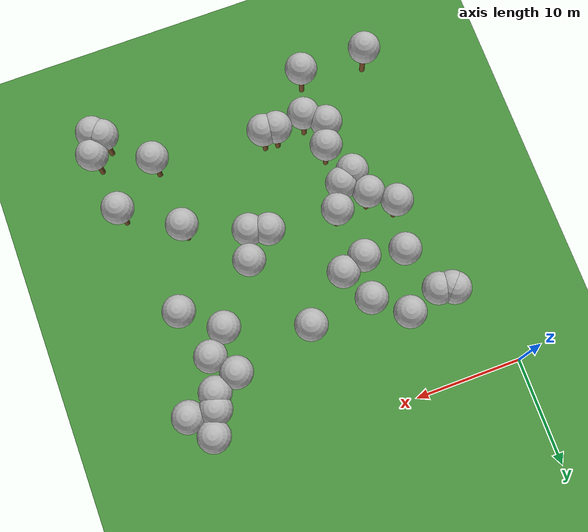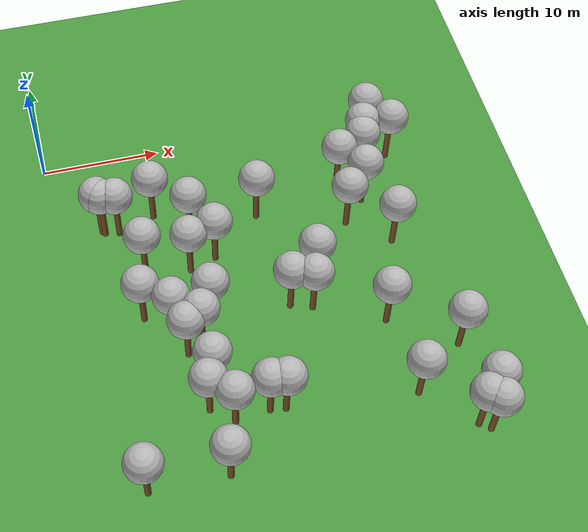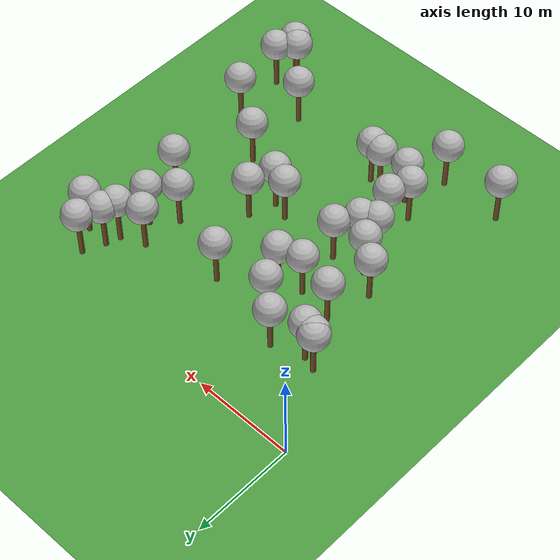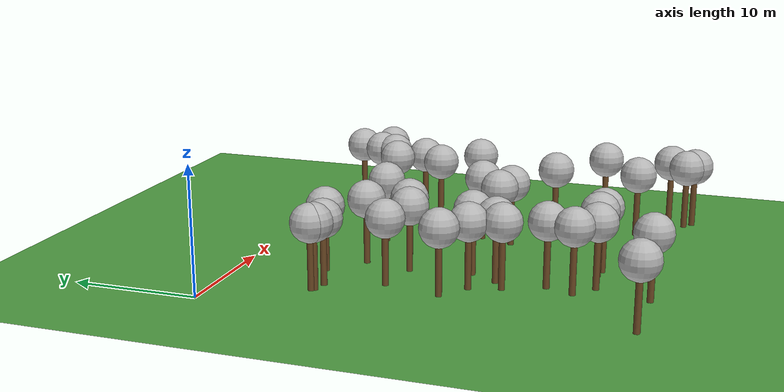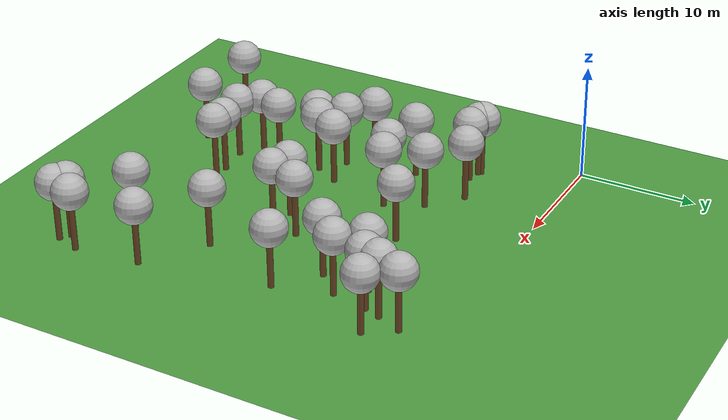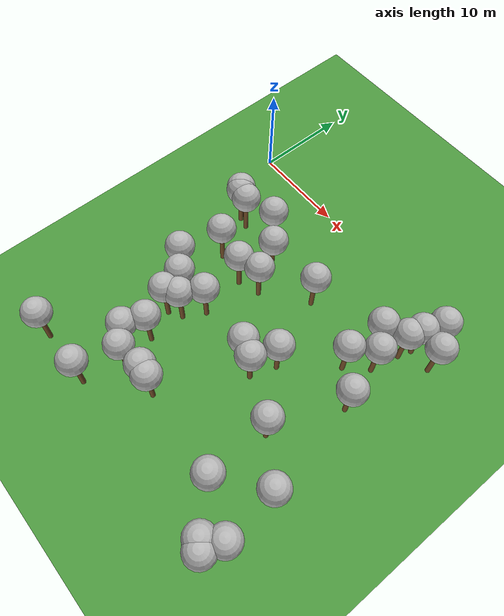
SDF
<sdf version="1.5">
 <world name="default">
  <model name="tree_simple496">
   <static>1</static>
   <link name="link">
    <pose>0 0 0.1 0 -0 0</pose>
    <collision name="collision_trunk">
     <pose>0 0 2 0 -0 0</pose>
     <geometry><cylinder><radius>0.25</radius><length>4</length></cylinder></geometry>
    </collision>
    <collision name="collision_treetop">
     <pose>0 0 5.2 0 -0 0</pose>
     <geometry><sphere><radius>1.5</radius></sphere></geometry>
    </collision>
    <visual name="trunk">
     <pose>0 0 2 0 -0 0</pose>
     <geometry><cylinder><radius>0.25</radius><length>4</length></cylinder></geometry>
     <material>
      <script>
       <uri>model://tree_simple/scripts</uri>
       <uri>model://tree_simple/materials/textures</uri>
       <name>TreeSimple/Trunk</name>
      </script>
     </material>
    </visual>
    <visual name="treetop">
     <pose>0 0 5.2 0 -0 0</pose>
     <geometry><sphere><radius>1.5</radius></sphere></geometry>
     <material>
      <script>
       <uri>model://tree_simple/scripts</uri>
       <uri>model://tree_simple/materials/textures</uri>
       <name>TreeSimple/Treetop</name>
      </script>
     </material>
    </visual>
   </link>
   <pose>13.6194298432 -26.9856291803 0 0 -0 0</pose>
  </model>
  <model name="tree_simple478">
   <static>1</static>
   <link name="link">
    <pose>0 0 0.1 0 -0 0</pose>
    <collision name="collision_trunk">
     <pose>0 0 2 0 -0 0</pose>
     <geometry><cylinder><radius>0.25</radius><length>4</length></cylinder></geometry>
    </collision>
    <collision name="collision_treetop">
     <pose>0 0 5.2 0 -0 0</pose>
     <geometry><sphere><radius>1.5</radius></sphere></geometry>
    </collision>
    <visual name="trunk">
     <pose>0 0 2 0 -0 0</pose>
     <geometry><cylinder><radius>0.25</radius><length>4</length></cylinder></geometry>
     <material>
      <script>
       <uri>model://tree_simple/scripts</uri>
       <uri>model://tree_simple/materials/textures</uri>
       <name>TreeSimple/Trunk</name>
      </script>
     </material>
    </visual>
    <visual name="treetop">
     <pose>0 0 5.2 0 -0 0</pose>
     <geometry><sphere><radius>1.5</radius></sphere></geometry>
     <material>
      <script>
       <uri>model://tree_simple/scripts</uri>
       <uri>model://tree_simple/materials/textures</uri>
       <name>TreeSimple/Treetop</name>
      </script>
     </material>
    </visual>
   </link>
   <pose>6.74093075138 -12.3162984353 0 0 -0 0</pose>
  </model>
  <model name="tree_simple472">
   <static>1</static>
   <link name="link">
    <pose>0 0 0.1 0 -0 0</pose>
    <collision name="collision_trunk">
     <pose>0 0 2 0 -0 0</pose>
     <geometry><cylinder><radius>0.25</radius><length>4</length></cylinder></geometry>
    </collision>
    <collision name="collision_treetop">
     <pose>0 0 5.2 0 -0 0</pose>
     <geometry><sphere><radius>1.5</radius></sphere></geometry>
    </collision>
    <visual name="trunk">
     <pose>0 0 2 0 -0 0</pose>
     <geometry><cylinder><radius>0.25</radius><length>4</length></cylinder></geometry>
     <material>
      <script>
       <uri>model://tree_simple/scripts</uri>
       <uri>model://tree_simple/materials/textures</uri>
       <name>TreeSimple/Trunk</name>
      </script>
     </material>
    </visual>
    <visual name="treetop">
     <pose>0 0 5.2 0 -0 0</pose>
     <geometry><sphere><radius>1.5</radius></sphere></geometry>
     <material>
      <script>
       <uri>model://tree_simple/scripts</uri>
       <uri>model://tree_simple/materials/textures</uri>
       <name>TreeSimple/Treetop</name>
      </script>
     </material>
    </visual>
   </link>
   <pose>9.92228677952 -23.8303447852 0 0 -0 0</pose>
  </model>
  <model name="tree_simple469">
   <static>1</static>
   <link name="link">
    <pose>0 0 0.1 0 -0 0</pose>
    <collision name="collision_trunk">
     <pose>0 0 2 0 -0 0</pose>
     <geometry><cylinder><radius>0.25</radius><length>4</length></cylinder></geometry>
    </collision>
    <collision name="collision_treetop">
     <pose>0 0 5.2 0 -0 0</pose>
     <geometry><sphere><radius>1.5</radius></sphere></geometry>
    </collision>
    <visual name="trunk">
     <pose>0 0 2 0 -0 0</pose>
     <geometry><cylinder><radius>0.25</radius><length>4</length></cylinder></geometry>
     <material>
      <script>
       <uri>model://tree_simple/scripts</uri>
       <uri>model://tree_simple/materials/textures</uri>
       <name>TreeSimple/Trunk</name>
      </script>
     </material>
    </visual>
    <visual name="treetop">
     <pose>0 0 5.2 0 -0 0</pose>
     <geometry><sphere><radius>1.5</radius></sphere></geometry>
     <material>
      <script>
       <uri>model://tree_simple/scripts</uri>
       <uri>model://tree_simple/materials/textures</uri>
       <name>TreeSimple/Treetop</name>
      </script>
     </material>
    </visual>
   </link>
   <pose>28.6908934165 -31.7515844244 0 0 -0 0</pose>
  </model>
  <model name="tree_simple463">
   <static>1</static>
   <link name="link">
    <pose>0 0 0.1 0 -0 0</pose>
    <collision name="collision_trunk">
     <pose>0 0 2 0 -0 0</pose>
     <geometry><cylinder><radius>0.25</radius><length>4</length></cylinder></geometry>
    </collision>
    <collision name="collision_treetop">
     <pose>0 0 5.2 0 -0 0</pose>
     <geometry><sphere><radius>1.5</radius></sphere></geometry>
    </collision>
    <visual name="trunk">
     <pose>0 0 2 0 -0 0</pose>
     <geometry><cylinder><radius>0.25</radius><length>4</length></cylinder></geometry>
     <material>
      <script>
       <uri>model://tree_simple/scripts</uri>
       <uri>model://tree_simple/materials/textures</uri>
       <name>TreeSimple/Trunk</name>
      </script>
     </material>
    </visual>
    <visual name="treetop">
     <pose>0 0 5.2 0 -0 0</pose>
     <geometry><sphere><radius>1.5</radius></sphere></geometry>
     <material>
      <script>
       <uri>model://tree_simple/scripts</uri>
       <uri>model://tree_simple/materials/textures</uri>
       <name>TreeSimple/Treetop</name>
      </script>
     </material>
    </visual>
   </link>
   <pose>4.14452898467 -7.71733475474 0 0 -0 0</pose>
  </model>
  <model name="tree_simple451">
   <static>1</static>
   <link name="link">
    <pose>0 0 0.1 0 -0 0</pose>
    <collision name="collision_trunk">
     <pose>0 0 2 0 -0 0</pose>
     <geometry><cylinder><radius>0.25</radius><length>4</length></cylinder></geometry>
    </collision>
    <collision name="collision_treetop">
     <pose>0 0 5.2 0 -0 0</pose>
     <geometry><sphere><radius>1.5</radius></sphere></geometry>
    </collision>
    <visual name="trunk">
     <pose>0 0 2 0 -0 0</pose>
     <geometry><cylinder><radius>0.25</radius><length>4</length></cylinder></geometry>
     <material>
      <script>
       <uri>model://tree_simple/scripts</uri>
       <uri>model://tree_simple/materials/textures</uri>
       <name>TreeSimple/Trunk</name>
      </script>
     </material>
    </visual>
    <visual name="treetop">
     <pose>0 0 5.2 0 -0 0</pose>
     <geometry><sphere><radius>1.5</radius></sphere></geometry>
     <material>
      <script>
       <uri>model://tree_simple/scripts</uri>
       <uri>model://tree_simple/materials/textures</uri>
       <name>TreeSimple/Treetop</name>
      </script>
     </material>
    </visual>
   </link>
   <pose>25.0880879186 -28.1508348671 0 0 -0 0</pose>
  </model>
  <model name="tree_simple439">
   <static>1</static>
   <link name="link">
    <pose>0 0 0.1 0 -0 0</pose>
    <collision name="collision_trunk">
     <pose>0 0 2 0 -0 0</pose>
     <geometry><cylinder><radius>0.25</radius><length>4</length></cylinder></geometry>
    </collision>
    <collision name="collision_treetop">
     <pose>0 0 5.2 0 -0 0</pose>
     <geometry><sphere><radius>1.5</radius></sphere></geometry>
    </collision>
    <visual name="trunk">
     <pose>0 0 2 0 -0 0</pose>
     <geometry><cylinder><radius>0.25</radius><length>4</length></cylinder></geometry>
     <material>
      <script>
       <uri>model://tree_simple/scripts</uri>
       <uri>model://tree_simple/materials/textures</uri>
       <name>TreeSimple/Trunk</name>
      </script>
     </material>
    </visual>
    <visual name="treetop">
     <pose>0 0 5.2 0 -0 0</pose>
     <geometry><sphere><radius>1.5</radius></sphere></geometry>
     <material>
      <script>
       <uri>model://tree_simple/scripts</uri>
       <uri>model://tree_simple/materials/textures</uri>
       <name>TreeSimple/Treetop</name>
      </script>
     </material>
    </visual>
   </link>
   <pose>8.56501316053 -20.7640585998 0 0 -0 0</pose>
  </model>
  <model name="tree_simple432">
   <static>1</static>
   <link name="link">
    <pose>0 0 0.1 0 -0 0</pose>
    <collision name="collision_trunk">
     <pose>0 0 2 0 -0 0</pose>
     <geometry><cylinder><radius>0.25</radius><length>4</length></cylinder></geometry>
    </collision>
    <collision name="collision_treetop">
     <pose>0 0 5.2 0 -0 0</pose>
     <geometry><sphere><radius>1.5</radius></sphere></geometry>
    </collision>
    <visual name="trunk">
     <pose>0 0 2 0 -0 0</pose>
     <geometry><cylinder><radius>0.25</radius><length>4</length></cylinder></geometry>
     <material>
      <script>
       <uri>model://tree_simple/scripts</uri>
       <uri>model://tree_simple/materials/textures</uri>
       <name>TreeSimple/Trunk</name>
      </script>
     </material>
    </visual>
    <visual name="treetop">
     <pose>0 0 5.2 0 -0 0</pose>
     <geometry><sphere><radius>1.5</radius></sphere></geometry>
     <material>
      <script>
       <uri>model://tree_simple/scripts</uri>
       <uri>model://tree_simple/materials/textures</uri>
       <name>TreeSimple/Treetop</name>
      </script>
     </material>
    </visual>
   </link>
   <pose>8.39657738542 -6.88848549894 0 0 -0 0</pose>
  </model>
  <model name="tree_simple429">
   <static>1</static>
   <link name="link">
    <pose>0 0 0.1 0 -0 0</pose>
    <collision name="collision_trunk">
     <pose>0 0 2 0 -0 0</pose>
     <geometry><cylinder><radius>0.25</radius><length>4</length></cylinder></geometry>
    </collision>
    <collision name="collision_treetop">
     <pose>0 0 5.2 0 -0 0</pose>
     <geometry><sphere><radius>1.5</radius></sphere></geometry>
    </collision>
    <visual name="trunk">
     <pose>0 0 2 0 -0 0</pose>
     <geometry><cylinder><radius>0.25</radius><length>4</length></cylinder></geometry>
     <material>
      <script>
       <uri>model://tree_simple/scripts</uri>
       <uri>model://tree_simple/materials/textures</uri>
       <name>TreeSimple/Trunk</name>
      </script>
     </material>
    </visual>
    <visual name="treetop">
     <pose>0 0 5.2 0 -0 0</pose>
     <geometry><sphere><radius>1.5</radius></sphere></geometry>
     <material>
      <script>
       <uri>model://tree_simple/scripts</uri>
       <uri>model://tree_simple/materials/textures</uri>
       <name>TreeSimple/Treetop</name>
      </script>
     </material>
    </visual>
   </link>
   <pose>29.4727075469 -24.7358283571 0 0 -0 0</pose>
  </model>
  <model name="tree_simple428">
   <static>1</static>
   <link name="link">
    <pose>0 0 0.1 0 -0 0</pose>
    <collision name="collision_trunk">
     <pose>0 0 2 0 -0 0</pose>
     <geometry><cylinder><radius>0.25</radius><length>4</length></cylinder></geometry>
    </collision>
    <collision name="collision_treetop">
     <pose>0 0 5.2 0 -0 0</pose>
     <geometry><sphere><radius>1.5</radius></sphere></geometry>
    </collision>
    <visual name="trunk">
     <pose>0 0 2 0 -0 0</pose>
     <geometry><cylinder><radius>0.25</radius><length>4</length></cylinder></geometry>
     <material>
      <script>
       <uri>model://tree_simple/scripts</uri>
       <uri>model://tree_simple/materials/textures</uri>
       <name>TreeSimple/Trunk</name>
      </script>
     </material>
    </visual>
    <visual name="treetop">
     <pose>0 0 5.2 0 -0 0</pose>
     <geometry><sphere><radius>1.5</radius></sphere></geometry>
     <material>
      <script>
       <uri>model://tree_simple/scripts</uri>
       <uri>model://tree_simple/materials/textures</uri>
       <name>TreeSimple/Treetop</name>
      </script>
     </material>
    </visual>
   </link>
   <pose>9.87663766252 -19.9509422297 0 0 -0 0</pose>
  </model>
  <model name="tree_simple394">
   <static>1</static>
   <link name="link">
    <pose>0 0 0.1 0 -0 0</pose>
    <collision name="collision_trunk">
     <pose>0 0 2 0 -0 0</pose>
     <geometry><cylinder><radius>0.25</radius><length>4</length></cylinder></geometry>
    </collision>
    <collision name="collision_treetop">
     <pose>0 0 5.2 0 -0 0</pose>
     <geometry><sphere><radius>1.5</radius></sphere></geometry>
    </collision>
    <visual name="trunk">
     <pose>0 0 2 0 -0 0</pose>
     <geometry><cylinder><radius>0.25</radius><length>4</length></cylinder></geometry>
     <material>
      <script>
       <uri>model://tree_simple/scripts</uri>
       <uri>model://tree_simple/materials/textures</uri>
       <name>TreeSimple/Trunk</name>
      </script>
     </material>
    </visual>
    <visual name="treetop">
     <pose>0 0 5.2 0 -0 0</pose>
     <geometry><sphere><radius>1.5</radius></sphere></geometry>
     <material>
      <script>
       <uri>model://tree_simple/scripts</uri>
       <uri>model://tree_simple/materials/textures</uri>
       <name>TreeSimple/Treetop</name>
      </script>
     </material>
    </visual>
   </link>
   <pose>26.6658652991 -6.19294115589 0 0 -0 0</pose>
  </model>
  <model name="tree_simple389">
   <static>1</static>
   <link name="link">
    <pose>0 0 0.1 0 -0 0</pose>
    <collision name="collision_trunk">
     <pose>0 0 2 0 -0 0</pose>
     <geometry><cylinder><radius>0.25</radius><length>4</length></cylinder></geometry>
    </collision>
    <collision name="collision_treetop">
     <pose>0 0 5.2 0 -0 0</pose>
     <geometry><sphere><radius>1.5</radius></sphere></geometry>
    </collision>
    <visual name="trunk">
     <pose>0 0 2 0 -0 0</pose>
     <geometry><cylinder><radius>0.25</radius><length>4</length></cylinder></geometry>
     <material>
      <script>
       <uri>model://tree_simple/scripts</uri>
       <uri>model://tree_simple/materials/textures</uri>
       <name>TreeSimple/Trunk</name>
      </script>
     </material>
    </visual>
    <visual name="treetop">
     <pose>0 0 5.2 0 -0 0</pose>
     <geometry><sphere><radius>1.5</radius></sphere></geometry>
     <material>
      <script>
       <uri>model://tree_simple/scripts</uri>
       <uri>model://tree_simple/materials/textures</uri>
       <name>TreeSimple/Treetop</name>
      </script>
     </material>
    </visual>
   </link>
   <pose>12.5934036343 -12.2598342596 0 0 -0 0</pose>
  </model>
  <model name="tree_simple377">
   <static>1</static>
   <link name="link">
    <pose>0 0 0.1 0 -0 0</pose>
    <collision name="collision_trunk">
     <pose>0 0 2 0 -0 0</pose>
     <geometry><cylinder><radius>0.25</radius><length>4</length></cylinder></geometry>
    </collision>
    <collision name="collision_treetop">
     <pose>0 0 5.2 0 -0 0</pose>
     <geometry><sphere><radius>1.5</radius></sphere></geometry>
    </collision>
    <visual name="trunk">
     <pose>0 0 2 0 -0 0</pose>
     <geometry><cylinder><radius>0.25</radius><length>4</length></cylinder></geometry>
     <material>
      <script>
       <uri>model://tree_simple/scripts</uri>
       <uri>model://tree_simple/materials/textures</uri>
       <name>TreeSimple/Trunk</name>
      </script>
     </material>
    </visual>
    <visual name="treetop">
     <pose>0 0 5.2 0 -0 0</pose>
     <geometry><sphere><radius>1.5</radius></sphere></geometry>
     <material>
      <script>
       <uri>model://tree_simple/scripts</uri>
       <uri>model://tree_simple/materials/textures</uri>
       <name>TreeSimple/Treetop</name>
      </script>
     </material>
    </visual>
   </link>
   <pose>10.8205708978 -27.3699142702 0 0 -0 0</pose>
  </model>
  <model name="tree_simple327">
   <static>1</static>
   <link name="link">
    <pose>0 0 0.1 0 -0 0</pose>
    <collision name="collision_trunk">
     <pose>0 0 2 0 -0 0</pose>
     <geometry><cylinder><radius>0.25</radius><length>4</length></cylinder></geometry>
    </collision>
    <collision name="collision_treetop">
     <pose>0 0 5.2 0 -0 0</pose>
     <geometry><sphere><radius>1.5</radius></sphere></geometry>
    </collision>
    <visual name="trunk">
     <pose>0 0 2 0 -0 0</pose>
     <geometry><cylinder><radius>0.25</radius><length>4</length></cylinder></geometry>
     <material>
      <script>
       <uri>model://tree_simple/scripts</uri>
       <uri>model://tree_simple/materials/textures</uri>
       <name>TreeSimple/Trunk</name>
      </script>
     </material>
    </visual>
    <visual name="treetop">
     <pose>0 0 5.2 0 -0 0</pose>
     <geometry><sphere><radius>1.5</radius></sphere></geometry>
     <material>
      <script>
       <uri>model://tree_simple/scripts</uri>
       <uri>model://tree_simple/materials/textures</uri>
       <name>TreeSimple/Treetop</name>
      </script>
     </material>
    </visual>
   </link>
   <pose>5.78438571624 -16.7663148306 0 0 -0 0</pose>
  </model>
  <model name="tree_simple309">
   <static>1</static>
   <link name="link">
    <pose>0 0 0.1 0 -0 0</pose>
    <collision name="collision_trunk">
     <pose>0 0 2 0 -0 0</pose>
     <geometry><cylinder><radius>0.25</radius><length>4</length></cylinder></geometry>
    </collision>
    <collision name="collision_treetop">
     <pose>0 0 5.2 0 -0 0</pose>
     <geometry><sphere><radius>1.5</radius></sphere></geometry>
    </collision>
    <visual name="trunk">
     <pose>0 0 2 0 -0 0</pose>
     <geometry><cylinder><radius>0.25</radius><length>4</length></cylinder></geometry>
     <material>
      <script>
       <uri>model://tree_simple/scripts</uri>
       <uri>model://tree_simple/materials/textures</uri>
       <name>TreeSimple/Trunk</name>
      </script>
     </material>
    </visual>
    <visual name="treetop">
     <pose>0 0 5.2 0 -0 0</pose>
     <geometry><sphere><radius>1.5</radius></sphere></geometry>
     <material>
      <script>
       <uri>model://tree_simple/scripts</uri>
       <uri>model://tree_simple/materials/textures</uri>
       <name>TreeSimple/Treetop</name>
      </script>
     </material>
    </visual>
   </link>
   <pose>19.1748935323 -18.8000539767 0 0 -0 0</pose>
  </model>
  <model name="tree_simple301">
   <static>1</static>
   <link name="link">
    <pose>0 0 0.1 0 -0 0</pose>
    <collision name="collision_trunk">
     <pose>0 0 2 0 -0 0</pose>
     <geometry><cylinder><radius>0.25</radius><length>4</length></cylinder></geometry>
    </collision>
    <collision name="collision_treetop">
     <pose>0 0 5.2 0 -0 0</pose>
     <geometry><sphere><radius>1.5</radius></sphere></geometry>
    </collision>
    <visual name="trunk">
     <pose>0 0 2 0 -0 0</pose>
     <geometry><cylinder><radius>0.25</radius><length>4</length></cylinder></geometry>
     <material>
      <script>
       <uri>model://tree_simple/scripts</uri>
       <uri>model://tree_simple/materials/textures</uri>
       <name>TreeSimple/Trunk</name>
      </script>
     </material>
    </visual>
    <visual name="treetop">
     <pose>0 0 5.2 0 -0 0</pose>
     <geometry><sphere><radius>1.5</radius></sphere></geometry>
     <material>
      <script>
       <uri>model://tree_simple/scripts</uri>
       <uri>model://tree_simple/materials/textures</uri>
       <name>TreeSimple/Treetop</name>
      </script>
     </material>
    </visual>
   </link>
   <pose>27.965012063 -2.69695305694 0 0 -0 0</pose>
  </model>
  <model name="tree_simple292">
   <static>1</static>
   <link name="link">
    <pose>0 0 0.1 0 -0 0</pose>
    <collision name="collision_trunk">
     <pose>0 0 2 0 -0 0</pose>
     <geometry><cylinder><radius>0.25</radius><length>4</length></cylinder></geometry>
    </collision>
    <collision name="collision_treetop">
     <pose>0 0 5.2 0 -0 0</pose>
     <geometry><sphere><radius>1.5</radius></sphere></geometry>
    </collision>
    <visual name="trunk">
     <pose>0 0 2 0 -0 0</pose>
     <geometry><cylinder><radius>0.25</radius><length>4</length></cylinder></geometry>
     <material>
      <script>
       <uri>model://tree_simple/scripts</uri>
       <uri>model://tree_simple/materials/textures</uri>
       <name>TreeSimple/Trunk</name>
      </script>
     </material>
    </visual>
    <visual name="treetop">
     <pose>0 0 5.2 0 -0 0</pose>
     <geometry><sphere><radius>1.5</radius></sphere></geometry>
     <material>
      <script>
       <uri>model://tree_simple/scripts</uri>
       <uri>model://tree_simple/materials/textures</uri>
       <name>TreeSimple/Treetop</name>
      </script>
     </material>
    </visual>
   </link>
   <pose>16.8917664362 -8.8290409333 0 0 -0 0</pose>
  </model>
  <model name="tree_simple290">
   <static>1</static>
   <link name="link">
    <pose>0 0 0.1 0 -0 0</pose>
    <collision name="collision_trunk">
     <pose>0 0 2 0 -0 0</pose>
     <geometry><cylinder><radius>0.25</radius><length>4</length></cylinder></geometry>
    </collision>
    <collision name="collision_treetop">
     <pose>0 0 5.2 0 -0 0</pose>
     <geometry><sphere><radius>1.5</radius></sphere></geometry>
    </collision>
    <visual name="trunk">
     <pose>0 0 2 0 -0 0</pose>
     <geometry><cylinder><radius>0.25</radius><length>4</length></cylinder></geometry>
     <material>
      <script>
       <uri>model://tree_simple/scripts</uri>
       <uri>model://tree_simple/materials/textures</uri>
       <name>TreeSimple/Trunk</name>
      </script>
     </material>
    </visual>
    <visual name="treetop">
     <pose>0 0 5.2 0 -0 0</pose>
     <geometry><sphere><radius>1.5</radius></sphere></geometry>
     <material>
      <script>
       <uri>model://tree_simple/scripts</uri>
       <uri>model://tree_simple/materials/textures</uri>
       <name>TreeSimple/Treetop</name>
      </script>
     </material>
    </visual>
   </link>
   <pose>27.3398552582 -13.9618363734 0 0 -0 0</pose>
  </model>
  <model name="tree_simple288">
   <static>1</static>
   <link name="link">
    <pose>0 0 0.1 0 -0 0</pose>
    <collision name="collision_trunk">
     <pose>0 0 2 0 -0 0</pose>
     <geometry><cylinder><radius>0.25</radius><length>4</length></cylinder></geometry>
    </collision>
    <collision name="collision_treetop">
     <pose>0 0 5.2 0 -0 0</pose>
     <geometry><sphere><radius>1.5</radius></sphere></geometry>
    </collision>
    <visual name="trunk">
     <pose>0 0 2 0 -0 0</pose>
     <geometry><cylinder><radius>0.25</radius><length>4</length></cylinder></geometry>
     <material>
      <script>
       <uri>model://tree_simple/scripts</uri>
       <uri>model://tree_simple/materials/textures</uri>
       <name>TreeSimple/Trunk</name>
      </script>
     </material>
    </visual>
    <visual name="treetop">
     <pose>0 0 5.2 0 -0 0</pose>
     <geometry><sphere><radius>1.5</radius></sphere></geometry>
     <material>
      <script>
       <uri>model://tree_simple/scripts</uri>
       <uri>model://tree_simple/materials/textures</uri>
       <name>TreeSimple/Treetop</name>
      </script>
     </material>
    </visual>
   </link>
   <pose>27.0972467775 -4.81040951666 0 0 -0 0</pose>
  </model>
  <model name="tree_simple267">
   <static>1</static>
   <link name="link">
    <pose>0 0 0.1 0 -0 0</pose>
    <collision name="collision_trunk">
     <pose>0 0 2 0 -0 0</pose>
     <geometry><cylinder><radius>0.25</radius><length>4</length></cylinder></geometry>
    </collision>
    <collision name="collision_treetop">
     <pose>0 0 5.2 0 -0 0</pose>
     <geometry><sphere><radius>1.5</radius></sphere></geometry>
    </collision>
    <visual name="trunk">
     <pose>0 0 2 0 -0 0</pose>
     <geometry><cylinder><radius>0.25</radius><length>4</length></cylinder></geometry>
     <material>
      <script>
       <uri>model://tree_simple/scripts</uri>
       <uri>model://tree_simple/materials/textures</uri>
       <name>TreeSimple/Trunk</name>
      </script>
     </material>
    </visual>
    <visual name="treetop">
     <pose>0 0 5.2 0 -0 0</pose>
     <geometry><sphere><radius>1.5</radius></sphere></geometry>
     <material>
      <script>
       <uri>model://tree_simple/scripts</uri>
       <uri>model://tree_simple/materials/textures</uri>
       <name>TreeSimple/Treetop</name>
      </script>
     </material>
    </visual>
   </link>
   <pose>26.0311147771 -9.256788114 0 0 -0 0</pose>
  </model>
  <model name="tree_simple255">
   <static>1</static>
   <link name="link">
    <pose>0 0 0.1 0 -0 0</pose>
    <collision name="collision_trunk">
     <pose>0 0 2 0 -0 0</pose>
     <geometry><cylinder><radius>0.25</radius><length>4</length></cylinder></geometry>
    </collision>
    <collision name="collision_treetop">
     <pose>0 0 5.2 0 -0 0</pose>
     <geometry><sphere><radius>1.5</radius></sphere></geometry>
    </collision>
    <visual name="trunk">
     <pose>0 0 2 0 -0 0</pose>
     <geometry><cylinder><radius>0.25</radius><length>4</length></cylinder></geometry>
     <material>
      <script>
       <uri>model://tree_simple/scripts</uri>
       <uri>model://tree_simple/materials/textures</uri>
       <name>TreeSimple/Trunk</name>
      </script>
     </material>
    </visual>
    <visual name="treetop">
     <pose>0 0 5.2 0 -0 0</pose>
     <geometry><sphere><radius>1.5</radius></sphere></geometry>
     <material>
      <script>
       <uri>model://tree_simple/scripts</uri>
       <uri>model://tree_simple/materials/textures</uri>
       <name>TreeSimple/Treetop</name>
      </script>
     </material>
    </visual>
   </link>
   <pose>30.0970419452 -30.3026780561 0 0 -0 0</pose>
  </model>
  <model name="tree_simple249">
   <static>1</static>
   <link name="link">
    <pose>0 0 0.1 0 -0 0</pose>
    <collision name="collision_trunk">
     <pose>0 0 2 0 -0 0</pose>
     <geometry><cylinder><radius>0.25</radius><length>4</length></cylinder></geometry>
    </collision>
    <collision name="collision_treetop">
     <pose>0 0 5.2 0 -0 0</pose>
     <geometry><sphere><radius>1.5</radius></sphere></geometry>
    </collision>
    <visual name="trunk">
     <pose>0 0 2 0 -0 0</pose>
     <geometry><cylinder><radius>0.25</radius><length>4</length></cylinder></geometry>
     <material>
      <script>
       <uri>model://tree_simple/scripts</uri>
       <uri>model://tree_simple/materials/textures</uri>
       <name>TreeSimple/Trunk</name>
      </script>
     </material>
    </visual>
    <visual name="treetop">
     <pose>0 0 5.2 0 -0 0</pose>
     <geometry><sphere><radius>1.5</radius></sphere></geometry>
     <material>
      <script>
       <uri>model://tree_simple/scripts</uri>
       <uri>model://tree_simple/materials/textures</uri>
       <name>TreeSimple/Treetop</name>
      </script>
     </material>
    </visual>
   </link>
   <pose>9.52111231685 -31.538100668 0 0 -0 0</pose>
  </model>
  <model name="tree_simple222">
   <static>1</static>
   <link name="link">
    <pose>0 0 0.1 0 -0 0</pose>
    <collision name="collision_trunk">
     <pose>0 0 2 0 -0 0</pose>
     <geometry><cylinder><radius>0.25</radius><length>4</length></cylinder></geometry>
    </collision>
    <collision name="collision_treetop">
     <pose>0 0 5.2 0 -0 0</pose>
     <geometry><sphere><radius>1.5</radius></sphere></geometry>
    </collision>
    <visual name="trunk">
     <pose>0 0 2 0 -0 0</pose>
     <geometry><cylinder><radius>0.25</radius><length>4</length></cylinder></geometry>
     <material>
      <script>
       <uri>model://tree_simple/scripts</uri>
       <uri>model://tree_simple/materials/textures</uri>
       <name>TreeSimple/Trunk</name>
      </script>
     </material>
    </visual>
    <visual name="treetop">
     <pose>0 0 5.2 0 -0 0</pose>
     <geometry><sphere><radius>1.5</radius></sphere></geometry>
     <material>
      <script>
       <uri>model://tree_simple/scripts</uri>
       <uri>model://tree_simple/materials/textures</uri>
       <name>TreeSimple/Treetop</name>
      </script>
     </material>
    </visual>
   </link>
   <pose>3.92504774623 -7.51224141252 0 0 -0 0</pose>
  </model>
  <model name="tree_simple211">
   <static>1</static>
   <link name="link">
    <pose>0 0 0.1 0 -0 0</pose>
    <collision name="collision_trunk">
     <pose>0 0 2 0 -0 0</pose>
     <geometry><cylinder><radius>0.25</radius><length>4</length></cylinder></geometry>
    </collision>
    <collision name="collision_treetop">
     <pose>0 0 5.2 0 -0 0</pose>
     <geometry><sphere><radius>1.5</radius></sphere></geometry>
    </collision>
    <visual name="trunk">
     <pose>0 0 2 0 -0 0</pose>
     <geometry><cylinder><radius>0.25</radius><length>4</length></cylinder></geometry>
     <material>
      <script>
       <uri>model://tree_simple/scripts</uri>
       <uri>model://tree_simple/materials/textures</uri>
       <name>TreeSimple/Trunk</name>
      </script>
     </material>
    </visual>
    <visual name="treetop">
     <pose>0 0 5.2 0 -0 0</pose>
     <geometry><sphere><radius>1.5</radius></sphere></geometry>
     <material>
      <script>
       <uri>model://tree_simple/scripts</uri>
       <uri>model://tree_simple/materials/textures</uri>
       <name>TreeSimple/Treetop</name>
      </script>
     </material>
    </visual>
   </link>
   <pose>24.1088627432 -11.2741546154 0 0 -0 0</pose>
  </model>
  <model name="tree_simple191">
   <static>1</static>
   <link name="link">
    <pose>0 0 0.1 0 -0 0</pose>
    <collision name="collision_trunk">
     <pose>0 0 2 0 -0 0</pose>
     <geometry><cylinder><radius>0.25</radius><length>4</length></cylinder></geometry>
    </collision>
    <collision name="collision_treetop">
     <pose>0 0 5.2 0 -0 0</pose>
     <geometry><sphere><radius>1.5</radius></sphere></geometry>
    </collision>
    <visual name="trunk">
     <pose>0 0 2 0 -0 0</pose>
     <geometry><cylinder><radius>0.25</radius><length>4</length></cylinder></geometry>
     <material>
      <script>
       <uri>model://tree_simple/scripts</uri>
       <uri>model://tree_simple/materials/textures</uri>
       <name>TreeSimple/Trunk</name>
      </script>
     </material>
    </visual>
    <visual name="treetop">
     <pose>0 0 5.2 0 -0 0</pose>
     <geometry><sphere><radius>1.5</radius></sphere></geometry>
     <material>
      <script>
       <uri>model://tree_simple/scripts</uri>
       <uri>model://tree_simple/materials/textures</uri>
       <name>TreeSimple/Treetop</name>
      </script>
     </material>
    </visual>
   </link>
   <pose>7.88783183775 -18.3803184039 0 0 -0 0</pose>
  </model>
  <model name="tree_simple178">
   <static>1</static>
   <link name="link">
    <pose>0 0 0.1 0 -0 0</pose>
    <collision name="collision_trunk">
     <pose>0 0 2 0 -0 0</pose>
     <geometry><cylinder><radius>0.25</radius><length>4</length></cylinder></geometry>
    </collision>
    <collision name="collision_treetop">
     <pose>0 0 5.2 0 -0 0</pose>
     <geometry><sphere><radius>1.5</radius></sphere></geometry>
    </collision>
    <visual name="trunk">
     <pose>0 0 2 0 -0 0</pose>
     <geometry><cylinder><radius>0.25</radius><length>4</length></cylinder></geometry>
     <material>
      <script>
       <uri>model://tree_simple/scripts</uri>
       <uri>model://tree_simple/materials/textures</uri>
       <name>TreeSimple/Trunk</name>
      </script>
     </material>
    </visual>
    <visual name="treetop">
     <pose>0 0 5.2 0 -0 0</pose>
     <geometry><sphere><radius>1.5</radius></sphere></geometry>
     <material>
      <script>
       <uri>model://tree_simple/scripts</uri>
       <uri>model://tree_simple/materials/textures</uri>
       <name>TreeSimple/Treetop</name>
      </script>
     </material>
    </visual>
   </link>
   <pose>24.3791750449 -7.18218424398 0 0 -0 0</pose>
  </model>
  <model name="tree_simple168">
   <static>1</static>
   <link name="link">
    <pose>0 0 0.1 0 -0 0</pose>
    <collision name="collision_trunk">
     <pose>0 0 2 0 -0 0</pose>
     <geometry><cylinder><radius>0.25</radius><length>4</length></cylinder></geometry>
    </collision>
    <collision name="collision_treetop">
     <pose>0 0 5.2 0 -0 0</pose>
     <geometry><sphere><radius>1.5</radius></sphere></geometry>
    </collision>
    <visual name="trunk">
     <pose>0 0 2 0 -0 0</pose>
     <geometry><cylinder><radius>0.25</radius><length>4</length></cylinder></geometry>
     <material>
      <script>
       <uri>model://tree_simple/scripts</uri>
       <uri>model://tree_simple/materials/textures</uri>
       <name>TreeSimple/Trunk</name>
      </script>
     </material>
    </visual>
    <visual name="treetop">
     <pose>0 0 5.2 0 -0 0</pose>
     <geometry><sphere><radius>1.5</radius></sphere></geometry>
     <material>
      <script>
       <uri>model://tree_simple/scripts</uri>
       <uri>model://tree_simple/materials/textures</uri>
       <name>TreeSimple/Treetop</name>
      </script>
     </material>
    </visual>
   </link>
   <pose>14.8234440125 -27.1346741382 0 0 -0 0</pose>
  </model>
  <model name="tree_simple157">
   <static>1</static>
   <link name="link">
    <pose>0 0 0.1 0 -0 0</pose>
    <collision name="collision_trunk">
     <pose>0 0 2 0 -0 0</pose>
     <geometry><cylinder><radius>0.25</radius><length>4</length></cylinder></geometry>
    </collision>
    <collision name="collision_treetop">
     <pose>0 0 5.2 0 -0 0</pose>
     <geometry><sphere><radius>1.5</radius></sphere></geometry>
    </collision>
    <visual name="trunk">
     <pose>0 0 2 0 -0 0</pose>
     <geometry><cylinder><radius>0.25</radius><length>4</length></cylinder></geometry>
     <material>
      <script>
       <uri>model://tree_simple/scripts</uri>
       <uri>model://tree_simple/materials/textures</uri>
       <name>TreeSimple/Trunk</name>
      </script>
     </material>
    </visual>
    <visual name="treetop">
     <pose>0 0 5.2 0 -0 0</pose>
     <geometry><sphere><radius>1.5</radius></sphere></geometry>
     <material>
      <script>
       <uri>model://tree_simple/scripts</uri>
       <uri>model://tree_simple/materials/textures</uri>
       <name>TreeSimple/Treetop</name>
      </script>
     </material>
    </visual>
   </link>
   <pose>17.4643259264 -18.2232751505 0 0 -0 0</pose>
  </model>
  <model name="tree_simple156">
   <static>1</static>
   <link name="link">
    <pose>0 0 0.1 0 -0 0</pose>
    <collision name="collision_trunk">
     <pose>0 0 2 0 -0 0</pose>
     <geometry><cylinder><radius>0.25</radius><length>4</length></cylinder></geometry>
    </collision>
    <collision name="collision_treetop">
     <pose>0 0 5.2 0 -0 0</pose>
     <geometry><sphere><radius>1.5</radius></sphere></geometry>
    </collision>
    <visual name="trunk">
     <pose>0 0 2 0 -0 0</pose>
     <geometry><cylinder><radius>0.25</radius><length>4</length></cylinder></geometry>
     <material>
      <script>
       <uri>model://tree_simple/scripts</uri>
       <uri>model://tree_simple/materials/textures</uri>
       <name>TreeSimple/Trunk</name>
      </script>
     </material>
    </visual>
    <visual name="treetop">
     <pose>0 0 5.2 0 -0 0</pose>
     <geometry><sphere><radius>1.5</radius></sphere></geometry>
     <material>
      <script>
       <uri>model://tree_simple/scripts</uri>
       <uri>model://tree_simple/materials/textures</uri>
       <name>TreeSimple/Treetop</name>
      </script>
     </material>
    </visual>
   </link>
   <pose>20.0356149828 -16.1600287231 0 0 -0 0</pose>
  </model>
  <model name="tree_simple124">
   <static>1</static>
   <link name="link">
    <pose>0 0 0.1 0 -0 0</pose>
    <collision name="collision_trunk">
     <pose>0 0 2 0 -0 0</pose>
     <geometry><cylinder><radius>0.25</radius><length>4</length></cylinder></geometry>
    </collision>
    <collision name="collision_treetop">
     <pose>0 0 5.2 0 -0 0</pose>
     <geometry><sphere><radius>1.5</radius></sphere></geometry>
    </collision>
    <visual name="trunk">
     <pose>0 0 2 0 -0 0</pose>
     <geometry><cylinder><radius>0.25</radius><length>4</length></cylinder></geometry>
     <material>
      <script>
       <uri>model://tree_simple/scripts</uri>
       <uri>model://tree_simple/materials/textures</uri>
       <name>TreeSimple/Trunk</name>
      </script>
     </material>
    </visual>
    <visual name="treetop">
     <pose>0 0 5.2 0 -0 0</pose>
     <geometry><sphere><radius>1.5</radius></sphere></geometry>
     <material>
      <script>
       <uri>model://tree_simple/scripts</uri>
       <uri>model://tree_simple/materials/textures</uri>
       <name>TreeSimple/Treetop</name>
      </script>
     </material>
    </visual>
   </link>
   <pose>5.29940018808 -7.97080739541 0 0 -0 0</pose>
  </model>
  <model name="tree_simple120">
   <static>1</static>
   <link name="link">
    <pose>0 0 0.1 0 -0 0</pose>
    <collision name="collision_trunk">
     <pose>0 0 2 0 -0 0</pose>
     <geometry><cylinder><radius>0.25</radius><length>4</length></cylinder></geometry>
    </collision>
    <collision name="collision_treetop">
     <pose>0 0 5.2 0 -0 0</pose>
     <geometry><sphere><radius>1.5</radius></sphere></geometry>
    </collision>
    <visual name="trunk">
     <pose>0 0 2 0 -0 0</pose>
     <geometry><cylinder><radius>0.25</radius><length>4</length></cylinder></geometry>
     <material>
      <script>
       <uri>model://tree_simple/scripts</uri>
       <uri>model://tree_simple/materials/textures</uri>
       <name>TreeSimple/Trunk</name>
      </script>
     </material>
    </visual>
    <visual name="treetop">
     <pose>0 0 5.2 0 -0 0</pose>
     <geometry><sphere><radius>1.5</radius></sphere></geometry>
     <material>
      <script>
       <uri>model://tree_simple/scripts</uri>
       <uri>model://tree_simple/materials/textures</uri>
       <name>TreeSimple/Treetop</name>
      </script>
     </material>
    </visual>
   </link>
   <pose>29.4958477129 -4.98151152309 0 0 -0 0</pose>
  </model>
  <model name="tree_simple80">
   <static>1</static>
   <link name="link">
    <pose>0 0 0.1 0 -0 0</pose>
    <collision name="collision_trunk">
     <pose>0 0 2 0 -0 0</pose>
     <geometry><cylinder><radius>0.25</radius><length>4</length></cylinder></geometry>
    </collision>
    <collision name="collision_treetop">
     <pose>0 0 5.2 0 -0 0</pose>
     <geometry><sphere><radius>1.5</radius></sphere></geometry>
    </collision>
    <visual name="trunk">
     <pose>0 0 2 0 -0 0</pose>
     <geometry><cylinder><radius>0.25</radius><length>4</length></cylinder></geometry>
     <material>
      <script>
       <uri>model://tree_simple/scripts</uri>
       <uri>model://tree_simple/materials/textures</uri>
       <name>TreeSimple/Trunk</name>
      </script>
     </material>
    </visual>
    <visual name="treetop">
     <pose>0 0 5.2 0 -0 0</pose>
     <geometry><sphere><radius>1.5</radius></sphere></geometry>
     <material>
      <script>
       <uri>model://tree_simple/scripts</uri>
       <uri>model://tree_simple/materials/textures</uri>
       <name>TreeSimple/Treetop</name>
      </script>
     </material>
    </visual>
   </link>
   <pose>11.0693190469 -17.8172800913 0 0 -0 0</pose>
  </model>
  <model name="tree_simple61">
   <static>1</static>
   <link name="link">
    <pose>0 0 0.1 0 -0 0</pose>
    <collision name="collision_trunk">
     <pose>0 0 2 0 -0 0</pose>
     <geometry><cylinder><radius>0.25</radius><length>4</length></cylinder></geometry>
    </collision>
    <collision name="collision_treetop">
     <pose>0 0 5.2 0 -0 0</pose>
     <geometry><sphere><radius>1.5</radius></sphere></geometry>
    </collision>
    <visual name="trunk">
     <pose>0 0 2 0 -0 0</pose>
     <geometry><cylinder><radius>0.25</radius><length>4</length></cylinder></geometry>
     <material>
      <script>
       <uri>model://tree_simple/scripts</uri>
       <uri>model://tree_simple/materials/textures</uri>
       <name>TreeSimple/Trunk</name>
      </script>
     </material>
    </visual>
    <visual name="treetop">
     <pose>0 0 5.2 0 -0 0</pose>
     <geometry><sphere><radius>1.5</radius></sphere></geometry>
     <material>
      <script>
       <uri>model://tree_simple/scripts</uri>
       <uri>model://tree_simple/materials/textures</uri>
       <name>TreeSimple/Treetop</name>
      </script>
     </material>
    </visual>
   </link>
   <pose>11.1083893096 -9.22601092506 0 0 -0 0</pose>
  </model>
  <model name="tree_simple40">
   <static>1</static>
   <link name="link">
    <pose>0 0 0.1 0 -0 0</pose>
    <collision name="collision_trunk">
     <pose>0 0 2 0 -0 0</pose>
     <geometry><cylinder><radius>0.25</radius><length>4</length></cylinder></geometry>
    </collision>
    <collision name="collision_treetop">
     <pose>0 0 5.2 0 -0 0</pose>
     <geometry><sphere><radius>1.5</radius></sphere></geometry>
    </collision>
    <visual name="trunk">
     <pose>0 0 2 0 -0 0</pose>
     <geometry><cylinder><radius>0.25</radius><length>4</length></cylinder></geometry>
     <material>
      <script>
       <uri>model://tree_simple/scripts</uri>
       <uri>model://tree_simple/materials/textures</uri>
       <name>TreeSimple/Trunk</name>
      </script>
     </material>
    </visual>
    <visual name="treetop">
     <pose>0 0 5.2 0 -0 0</pose>
     <geometry><sphere><radius>1.5</radius></sphere></geometry>
     <material>
      <script>
       <uri>model://tree_simple/scripts</uri>
       <uri>model://tree_simple/materials/textures</uri>
       <name>TreeSimple/Treetop</name>
      </script>
     </material>
    </visual>
   </link>
   <pose>10.3610745353 -13.0055256356 0 0 -0 0</pose>
  </model>
  <model name="tree_simple39">
   <static>1</static>
   <link name="link">
    <pose>0 0 0.1 0 -0 0</pose>
    <collision name="collision_trunk">
     <pose>0 0 2 0 -0 0</pose>
     <geometry><cylinder><radius>0.25</radius><length>4</length></cylinder></geometry>
    </collision>
    <collision name="collision_treetop">
     <pose>0 0 5.2 0 -0 0</pose>
     <geometry><sphere><radius>1.5</radius></sphere></geometry>
    </collision>
    <visual name="trunk">
     <pose>0 0 2 0 -0 0</pose>
     <geometry><cylinder><radius>0.25</radius><length>4</length></cylinder></geometry>
     <material>
      <script>
       <uri>model://tree_simple/scripts</uri>
       <uri>model://tree_simple/materials/textures</uri>
       <name>TreeSimple/Trunk</name>
      </script>
     </material>
    </visual>
    <visual name="treetop">
     <pose>0 0 5.2 0 -0 0</pose>
     <geometry><sphere><radius>1.5</radius></sphere></geometry>
     <material>
      <script>
       <uri>model://tree_simple/scripts</uri>
       <uri>model://tree_simple/materials/textures</uri>
       <name>TreeSimple/Treetop</name>
      </script>
     </material>
    </visual>
   </link>
   <pose>3.31871539321 -31.4823750144 0 0 -0 0</pose>
  </model>
  <model name="tree_simple38">
   <static>1</static>
   <link name="link">
    <pose>0 0 0.1 0 -0 0</pose>
    <collision name="collision_trunk">
     <pose>0 0 2 0 -0 0</pose>
     <geometry><cylinder><radius>0.25</radius><length>4</length></cylinder></geometry>
    </collision>
    <collision name="collision_treetop">
     <pose>0 0 5.2 0 -0 0</pose>
     <geometry><sphere><radius>1.5</radius></sphere></geometry>
    </collision>
    <visual name="trunk">
     <pose>0 0 2 0 -0 0</pose>
     <geometry><cylinder><radius>0.25</radius><length>4</length></cylinder></geometry>
     <material>
      <script>
       <uri>model://tree_simple/scripts</uri>
       <uri>model://tree_simple/materials/textures</uri>
       <name>TreeSimple/Trunk</name>
      </script>
     </material>
    </visual>
    <visual name="treetop">
     <pose>0 0 5.2 0 -0 0</pose>
     <geometry><sphere><radius>1.5</radius></sphere></geometry>
     <material>
      <script>
       <uri>model://tree_simple/scripts</uri>
       <uri>model://tree_simple/materials/textures</uri>
       <name>TreeSimple/Treetop</name>
      </script>
     </material>
    </visual>
   </link>
   <pose>9.1535103592 -25.9369722849 0 0 -0 0</pose>
  </model>
  <model name="tree_simple31">
   <static>1</static>
   <link name="link">
    <pose>0 0 0.1 0 -0 0</pose>
    <collision name="collision_trunk">
     <pose>0 0 2 0 -0 0</pose>
     <geometry><cylinder><radius>0.25</radius><length>4</length></cylinder></geometry>
    </collision>
    <collision name="collision_treetop">
     <pose>0 0 5.2 0 -0 0</pose>
     <geometry><sphere><radius>1.5</radius></sphere></geometry>
    </collision>
    <visual name="trunk">
     <pose>0 0 2 0 -0 0</pose>
     <geometry><cylinder><radius>0.25</radius><length>4</length></cylinder></geometry>
     <material>
      <script>
       <uri>model://tree_simple/scripts</uri>
       <uri>model://tree_simple/materials/textures</uri>
       <name>TreeSimple/Trunk</name>
      </script>
     </material>
    </visual>
    <visual name="treetop">
     <pose>0 0 5.2 0 -0 0</pose>
     <geometry><sphere><radius>1.5</radius></sphere></geometry>
     <material>
      <script>
       <uri>model://tree_simple/scripts</uri>
       <uri>model://tree_simple/materials/textures</uri>
       <name>TreeSimple/Treetop</name>
      </script>
     </material>
    </visual>
   </link>
   <pose>29.4678634043 -32.342330319 0 0 -0 0</pose>
  </model>
  <model name="tree_simple3">
   <static>1</static>
   <link name="link">
    <pose>0 0 0.1 0 -0 0</pose>
    <collision name="collision_trunk">
     <pose>0 0 2 0 -0 0</pose>
     <geometry><cylinder><radius>0.25</radius><length>4</length></cylinder></geometry>
    </collision>
    <collision name="collision_treetop">
     <pose>0 0 5.2 0 -0 0</pose>
     <geometry><sphere><radius>1.5</radius></sphere></geometry>
    </collision>
    <visual name="trunk">
     <pose>0 0 2 0 -0 0</pose>
     <geometry><cylinder><radius>0.25</radius><length>4</length></cylinder></geometry>
     <material>
      <script>
       <uri>model://tree_simple/scripts</uri>
       <uri>model://tree_simple/materials/textures</uri>
       <name>TreeSimple/Trunk</name>
      </script>
     </material>
    </visual>
    <visual name="treetop">
     <pose>0 0 5.2 0 -0 0</pose>
     <geometry><sphere><radius>1.5</radius></sphere></geometry>
     <material>
      <script>
       <uri>model://tree_simple/scripts</uri>
       <uri>model://tree_simple/materials/textures</uri>
       <name>TreeSimple/Treetop</name>
      </script>
     </material>
    </visual>
   </link>
   <pose>24.571631205 -21.3215863424 0 0 -0 0</pose>
  </model>
  <model name="ground_plane">
   <static>true</static>
   <link name="link">
    <collision name="collision">
     <geometry><plane><normal>0 0 1</normal><size>250 250</size></plane></geometry>
     <surface><friction><ode><mu>100</mu><mu2>50</mu2></ode></friction></surface>
    </collision>
    <visual name="grass">
     <cast_shadows>false</cast_shadows>
     <geometry><plane><normal>0 0 1</normal><size>150 250</size></plane></geometry>
     <material>
      <script><uri>file://media/materials/scripts/gazebo.material</uri><name>Gazebo/Grass</name></script>
     </material>
    </visual>
   </link>
  </model>
 </world>
</sdf>
